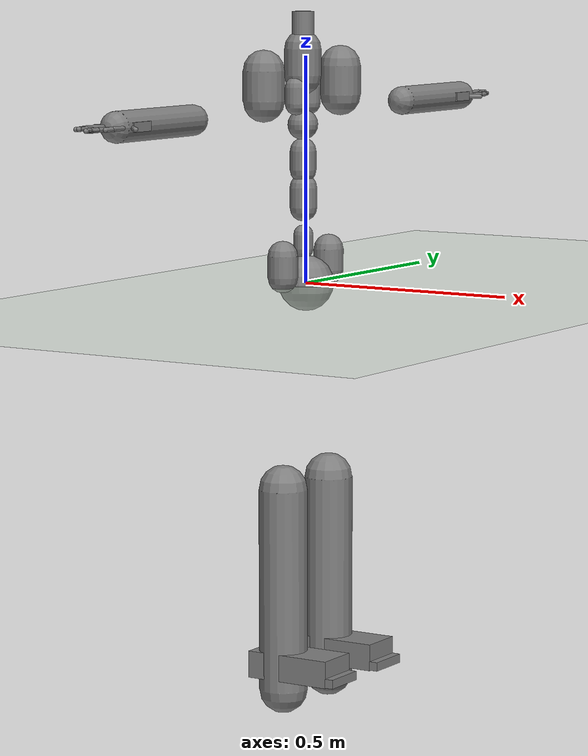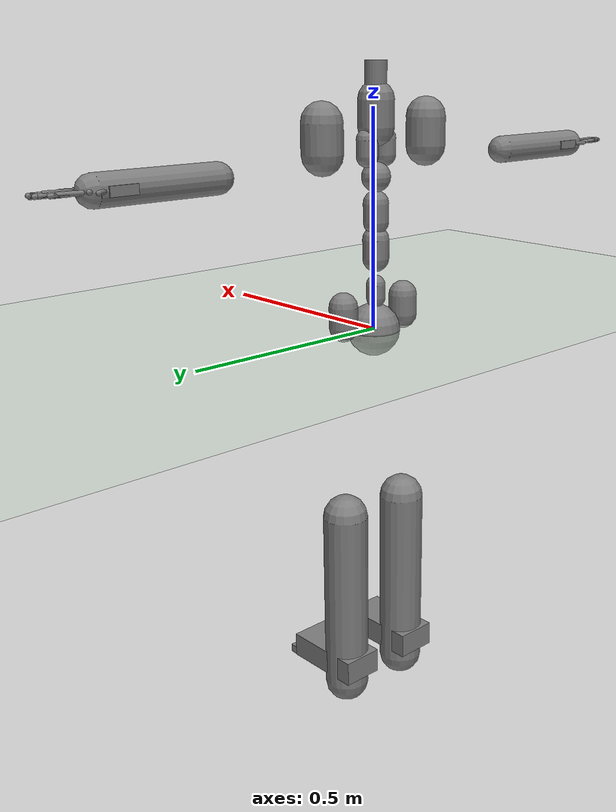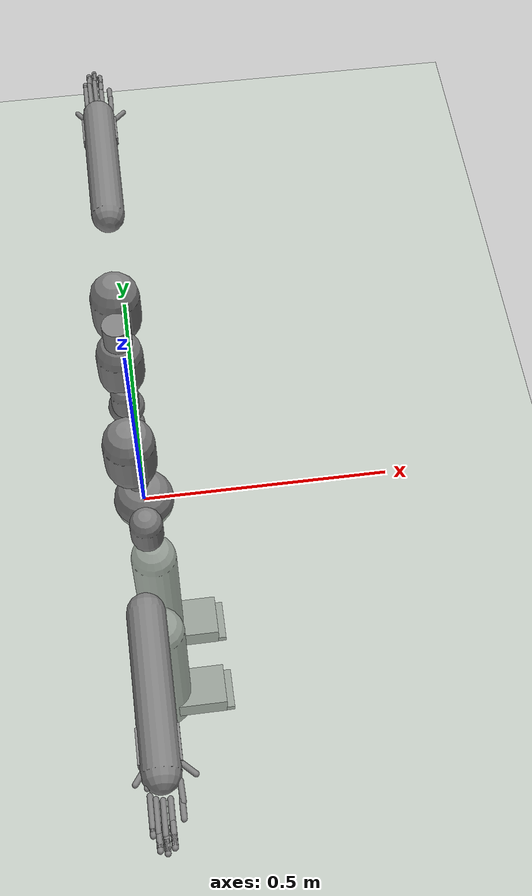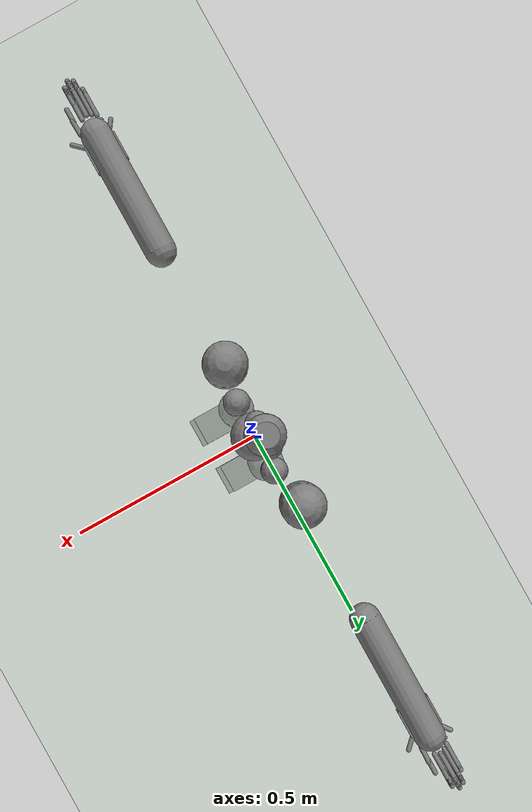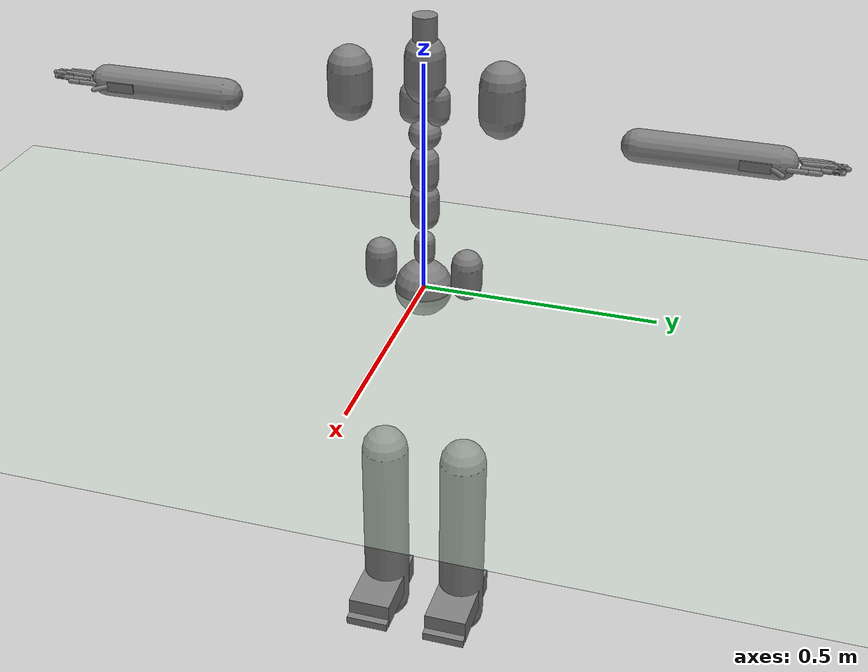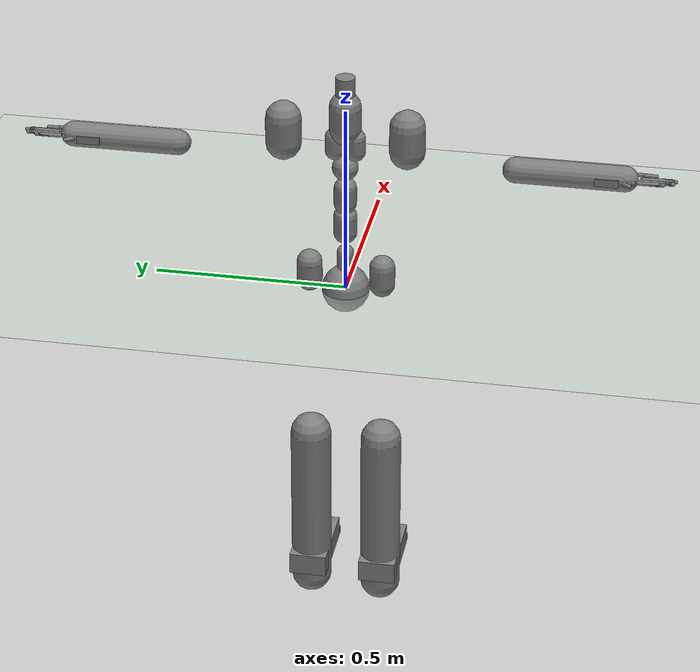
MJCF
<?xml version="1.0" ?>
<mujoco model="humanoid">
  <compiler coordinate="local"/>
  <statistic extent="2" center="0 0 1"/>
  <option timestep="0.00555"/>
  <default>
    <motor ctrlrange="-1 1" ctrllimited="true"/>
    <geom type="capsule" condim="1" friction="1.0 0.05 0.05" solimp=".9 .99 .003" solref=".015 1"/>
    <joint type="hinge" damping="0.1" stiffness="5" armature=".007" limited="true" solimplimit="0 .99 .01"/>
    <site size=".04" group="3"/>
  </default>
  <asset>
    <texture type="skybox" builtin="gradient" rgb1=".4 .5 .6" rgb2="0 0 0" width="100" height="100"/>
    <texture builtin="flat" height="1278" mark="cross" markrgb="1 1 1" name="texgeom" random="0.01" rgb1="0.8 0.6 0.4" rgb2="0.8 0.6 0.4" type="cube" width="127"/>
    <texture builtin="checker" height="100" name="texplane" rgb1="0 0 0" rgb2="0.8 0.8 0.8" type="2d" width="100"/>
    <material name="MatPlane" reflectance="0.5" shininess="1" specular="1" texrepeat="60 60" texture="texplane"/>
    <material name="geom" texture="texgeom" texuniform="true"/>
  </asset>
  <worldbody>
    <light cutoff="100" diffuse="1 1 1" dir="-0 0 -1.3" directional="true" exponent="1" pos="0 0 1.3" specular=".1 .1 .1"/>
    <geom conaffinity="1" condim="3" name="floor" pos="0 0 0" rgba="0.8 0.9 0.8 1" size="100 100 .2" type="plane" material="MatPlane"/>
    <body name="pHipOrigin" pos="0 0 0">
      <freejoint name="pHipOrigin"/>
      <geom type="sphere" contype="1" conaffinity="1" density="4629.6296296296305" size="0.06169" pos="0.0000 0.0000 -0.0000"/>
      <body name="jL5S1" pos="-0.00695129 0 0.06256141">
        <geom type="capsule" contype="1" conaffinity="1" density="1000" fromto="0 0 0.01259 0 0 0.04406" size="0.02203"/>
        <joint name="jL5S1_x" type="hinge" pos="0 0 0" axis="1 0 0" stiffness="500" damping="500" armature="0.02" range="-180.0000 180.0000"/>
        <joint name="jL5S1_y" type="hinge" pos="0 0 0" axis="0 1 0" stiffness="500" damping="500" armature="0.02" range="-180.0000 180.0000"/>
        <joint name="jL5S1_z" type="hinge" pos="0 0 0" axis="0 0 1" stiffness="500" damping="500" armature="0.02" range="-180.0000 180.0000"/>
        <body name="jL4L3" pos="0 0 0.08709376">
          <geom type="capsule" contype="1" conaffinity="1" density="1000" fromto="0 0 0.01742 0 0 0.06097" size="0.03048"/>
          <joint name="jL4L3_x" type="hinge" pos="0 0 0" axis="1 0 0" stiffness="500" damping="500" armature="0.02" range="-180.0000 180.0000"/>
          <joint name="jL4L3_y" type="hinge" pos="0 0 0" axis="0 1 0" stiffness="500" damping="500" armature="0.02" range="-180.0000 180.0000"/>
          <joint name="jL4L3_z" type="hinge" pos="0 0 0" axis="0 0 1" stiffness="500" damping="500" armature="0.02" range="-180.0000 180.0000"/>
          <body name="jL1T12" pos="-0.00064446 0 0.08353281">
            <geom type="capsule" contype="1" conaffinity="1" density="1000" fromto="0 0 0.01671 0 0 0.05847" size="0.02924"/>
            <joint name="jL1T12_x" type="hinge" pos="0 0 0" axis="1 0 0" stiffness="500" damping="500" armature="0.02" range="-180.0000 180.0000"/>
            <joint name="jL1T12_y" type="hinge" pos="0 0 0" axis="0 1 0" stiffness="500" damping="500" armature="0.02" range="-180.0000 180.0000"/>
            <joint name="jL1T12_z" type="hinge" pos="0 0 0" axis="0 0 1" stiffness="500" damping="500" armature="0.02" range="-180.0000 180.0000"/>
            <body name="jT9T8" pos="-0.00064508 0 0.08345083">
              <geom type="sphere" contype="1" conaffinity="1" density="1000" size="0.03338" pos="0.000 0.0000 0.033381"/>
              <joint name="jT9T8_x" type="hinge" pos="0 0 0" axis="1 0 0" stiffness="500" damping="500" armature="0.02" range="-180.0000 180.0000"/>
              <joint name="jT9T8_y" type="hinge" pos="0 0 0" axis="0 1 0" stiffness="500" damping="500" armature="0.02" range="-180.0000 180.0000"/>
              <joint name="jT9T8_z" type="hinge" pos="0 0 0" axis="0 0 1" stiffness="500" damping="500" armature="0.02" range="-180.0000 180.0000"/>
              <body name="jT1C7" pos="0 0 0.11714101">
                <geom type="capsule" contype="1" conaffinity="1" density="1000" fromto="0 0 0.02343 0 0 0.08200" size="0.04100"/>
                <joint name="jT1C7_x" type="hinge" pos="0 0 0" axis="1 0 0" stiffness="500" damping="500" armature="0.02" range="-180.0000 180.0000"/>
                <joint name="jT1C7_y" type="hinge" pos="0 0 0" axis="0 1 0" stiffness="500" damping="500" armature="0.02" range="-180.0000 180.0000"/>
                <joint name="jT1C7_z" type="hinge" pos="0 0 0" axis="0 0 1" stiffness="500" damping="500" armature="0.02" range="-180.0000 180.0000"/>
                <body name="jC1Head" pos="0.00096641 0 0.08191570">
                  <geom type="cylinder" contype="1" conaffinity="1" density="1000" fromto="0 0 0 0 0 0.08192" size="0.02458"/>
                  <joint name="jC1Head_x" type="hinge" pos="0 0 0" axis="1 0 0" stiffness="500" damping="500" armature="0.02" range="-180.0000 180.0000"/>
                  <joint name="jC1Head_y" type="hinge" pos="0 0 0" axis="0 1 0" stiffness="500" damping="500" armature="0.02" range="-180.0000 180.0000"/>
                  <joint name="jC1Head_z" type="hinge" pos="0 0 0" axis="0 0 1" stiffness="500" damping="500" armature="0.02" range="-180.0000 180.0000"/>
                </body>
              </body>
              <body name="jRightT4Shoulder" pos="0 -0.02700918 0.06585430">
                <geom type="capsule" contype="1" conaffinity="1" density="1000" fromto="0 0 0.01424 0 0 0.04982" size="0.02491"/>
                <joint name="jRightT4Shoulder_x" type="hinge" pos="0 0 0" axis="1 0 0" stiffness="500" damping="500" armature="0.02" range="-180.0000 180.0000"/>
                <joint name="jRightT4Shoulder_y" type="hinge" pos="0 0 0" axis="0 1 0" stiffness="500" damping="500" armature="0.02" range="-180.0000 180.0000"/>
                <joint name="jRightT4Shoulder_z" type="hinge" pos="0 0 0" axis="0 0 1" stiffness="500" damping="500" armature="0.02" range="-180.0000 180.0000"/>
                <body name="jRightShoulder" pos="0 -0.13014023 0">
                  <geom type="capsule" contype="1" conaffinity="1" density="1000" fromto="0 0 0.02603 0 0 0.09110" size="0.04555"/>
                  <joint name="jRightShoulder_x" type="hinge" pos="0 0 0" axis="1 0 0" stiffness="500" damping="500" armature="0.02" range="-180.0000 180.0000"/>
                  <joint name="jRightShoulder_y" type="hinge" pos="0 0 0" axis="0 1 0" stiffness="500" damping="500" armature="0.02" range="-180.0000 180.0000"/>
                  <joint name="jRightShoulder_z" type="hinge" pos="0 0 0" axis="0 0 1" stiffness="500" damping="500" armature="0.02" range="-180.0000 180.0000"/>
                  <body name="jRightElbow" pos="0 -0.27231985 0">
                    <geom type="capsule" contype="1" conaffinity="1" density="1000" fromto="0 0 0 0.00000000 -0.27231985 0.00000000" size="0.03268"/>
                    <joint name="jRightElbow_x" type="hinge" pos="0 0 0" axis="1 0 0" stiffness="500" damping="500" armature="0.02" range="-180.0000 180.0000"/>
                    <joint name="jRightElbow_y" type="hinge" pos="0 0 0" axis="0 1 0" stiffness="500" damping="500" armature="0.02" range="-180.0000 180.0000"/>
                    <joint name="jRightElbow_z" type="hinge" pos="0 0 0" axis="0 0 1" stiffness="500" damping="500" armature="0.02" range="-180.0000 180.0000"/>
                    <body name="jRightWrist" pos="0.00009181 -0.22811689 0">
                      <geom density="1000" type="box" pos="0 0 0" size="0.035 0.03 0.01" quat="1.0000 0.0000 0.0000 0.0000"/>
                      <joint name="jRightWrist_x" type="hinge" pos="0 0 0" axis="1 0 0" stiffness="500" damping="500" armature="0.02" range="-180.0000 180.0000"/>
                      <joint name="jRightWrist_y" type="hinge" pos="0 0 0" axis="0 1 0" stiffness="500" damping="500" armature="0.02" range="-180.0000 180.0000"/>
                      <joint name="jRightWrist_z" type="hinge" pos="0 0 0" axis="0 0 1" stiffness="500" damping="500" armature="0.02" range="-180.0000 180.0000"/>
                      <body name="jRightFirstCMC" pos="0.02661515 -0.02551212 -0.00120530">
                        <geom type="capsule" contype="1" conaffinity="1" density="1000" fromto="0 0 0 0.02661515 -0.02551212 -0.00120530" size="0.005"/>
                        <joint name="jRightFirstCMC_x" type="hinge" pos="0 0 0" axis="1 0 0" stiffness="500" damping="500" armature="0.02" range="-180.0000 180.0000"/>
                        <joint name="jRightFirstCMC_y" type="hinge" pos="0 0 0" axis="0 1 0" stiffness="500" damping="500" armature="0.02" range="-180.0000 180.0000"/>
                        <joint name="jRightFirstCMC_z" type="hinge" pos="0 0 0" axis="0 0 1" stiffness="500" damping="500" armature="0.02" range="-180.0000 180.0000"/>
                        <body name="jRightFirstMCP" pos="0.00119442 -0.03370581 0.00071220">
                          <geom type="capsule" contype="1" conaffinity="1" density="1000" fromto="0 0 0 0.00119442 -0.03370581 0.00071220" size="0.005"/>
                          <joint name="jRightFirstMCP_x" type="hinge" pos="0 0 0" axis="1 0 0" stiffness="500" damping="500" armature="0.02" range="-180.0000 180.0000"/>
                          <joint name="jRightFirstMCP_y" type="hinge" pos="0 0 0" axis="0 1 0" stiffness="500" damping="500" armature="0.02" range="-180.0000 180.0000"/>
                          <joint name="jRightFirstMCP_z" type="hinge" pos="0 0 0" axis="0 0 1" stiffness="500" damping="500" armature="0.02" range="-180.0000 180.0000"/>
                          <body name="jRightIP" pos="0 -0.02957464 0">
                            <geom type="capsule" contype="1" conaffinity="1" density="1000" fromto="0 0 0 0.00000000 -0.02957464 0.00000000" size="0.005"/>
                            <joint name="jRightIP_x" type="hinge" pos="0 0 0" axis="1 0 0" stiffness="500" damping="500" armature="0.02" range="-180.0000 180.0000"/>
                            <joint name="jRightIP_y" type="hinge" pos="0 0 0" axis="0 1 0" stiffness="500" damping="500" armature="0.02" range="-180.0000 180.0000"/>
                            <joint name="jRightIP_z" type="hinge" pos="0 0 0" axis="0 0 1" stiffness="500" damping="500" armature="0.02" range="-180.0000 180.0000"/>
                          </body>
                        </body>
                      </body>
                      <body name="jRightSecondCMC" pos="0.01046842 -0.03058540 -0.00053348">
                        <geom type="capsule" contype="1" conaffinity="1" density="1000" fromto="0 0 0 0.01046842 -0.03058540 -0.00053348" size="0.005"/>
                        <joint name="jRightSecondCMC_x" type="hinge" pos="0 0 0" axis="1 0 0" stiffness="500" damping="500" armature="0.02" range="-180.0000 180.0000"/>
                        <joint name="jRightSecondCMC_y" type="hinge" pos="0 0 0" axis="0 1 0" stiffness="500" damping="500" armature="0.02" range="-180.0000 180.0000"/>
                        <joint name="jRightSecondCMC_z" type="hinge" pos="0 0 0" axis="0 0 1" stiffness="500" damping="500" armature="0.02" range="-180.0000 180.0000"/>
                        <body name="jRightSecondMCP" pos="-0.00034161 -0.05448380 -0.00056518">
                          <geom type="capsule" contype="1" conaffinity="1" density="1000" fromto="0 0 0 -0.00034161 -0.05448380 -0.00056518" size="0.005"/>
                          <joint name="jRightSecondMCP_x" type="hinge" pos="0 0 0" axis="1 0 0" stiffness="500" damping="500" armature="0.02" range="-180.0000 180.0000"/>
                          <joint name="jRightSecondMCP_y" type="hinge" pos="0 0 0" axis="0 1 0" stiffness="500" damping="500" armature="0.02" range="-180.0000 180.0000"/>
                          <joint name="jRightSecondMCP_z" type="hinge" pos="0 0 0" axis="0 0 1" stiffness="500" damping="500" armature="0.02" range="-180.0000 180.0000"/>
                          <body name="jRightSecondPIP" pos="0 -0.03576731 0">
                            <geom type="capsule" contype="1" conaffinity="1" density="1000" fromto="0 0 0 0.00000000 -0.03576731 0.00000000" size="0.005"/>
                            <joint name="jRightSecondPIP_x" type="hinge" pos="0 0 0" axis="1 0 0" stiffness="500" damping="500" armature="0.02" range="-180.0000 180.0000"/>
                            <joint name="jRightSecondPIP_y" type="hinge" pos="0 0 0" axis="0 1 0" stiffness="500" damping="500" armature="0.02" range="-180.0000 180.0000"/>
                            <joint name="jRightSecondPIP_z" type="hinge" pos="0 0 0" axis="0 0 1" stiffness="500" damping="500" armature="0.02" range="-180.0000 180.0000"/>
                            <body name="jRightSecondDIP" pos="0 -0.01952346 0">
                              <geom type="capsule" contype="1" conaffinity="1" density="1000" fromto="0 0 0 0.00000000 -0.01952346 0.00000000" size="0.005"/>
                              <joint name="jRightSecondDIP_x" type="hinge" pos="0 0 0" axis="1 0 0" stiffness="500" damping="500" armature="0.02" range="-180.0000 180.0000"/>
                              <joint name="jRightSecondDIP_y" type="hinge" pos="0 0 0" axis="0 1 0" stiffness="500" damping="500" armature="0.02" range="-180.0000 180.0000"/>
                              <joint name="jRightSecondDIP_z" type="hinge" pos="0 0 0" axis="0 0 1" stiffness="500" damping="500" armature="0.02" range="-180.0000 180.0000"/>
                            </body>
                          </body>
                        </body>
                      </body>
                      <body name="jRightThirdCMC" pos="-0.00063784 -0.03449304 0.00145014">
                        <geom type="capsule" contype="1" conaffinity="1" density="1000" fromto="0 0 0 -0.00063784 -0.03449304 0.00145014" size="0.005"/>
                        <joint name="jRightThirdCMC_x" type="hinge" pos="0 0 0" axis="1 0 0" stiffness="500" damping="500" armature="0.02" range="-180.0000 180.0000"/>
                        <joint name="jRightThirdCMC_y" type="hinge" pos="0 0 0" axis="0 1 0" stiffness="500" damping="500" armature="0.02" range="-180.0000 180.0000"/>
                        <joint name="jRightThirdCMC_z" type="hinge" pos="0 0 0" axis="0 0 1" stiffness="500" damping="500" armature="0.02" range="-180.0000 180.0000"/>
                        <body name="jRightThirdMCP" pos="-0.00063902 -0.05294290 0.00144037">
                          <geom type="capsule" contype="1" conaffinity="1" density="1000" fromto="0 0 0 -0.00063902 -0.05294290 0.00144037" size="0.005"/>
                          <joint name="jRightThirdMCP_x" type="hinge" pos="0 0 0" axis="1 0 0" stiffness="500" damping="500" armature="0.02" range="-180.0000 180.0000"/>
                          <joint name="jRightThirdMCP_y" type="hinge" pos="0 0 0" axis="0 1 0" stiffness="500" damping="500" armature="0.02" range="-180.0000 180.0000"/>
                          <joint name="jRightThirdMCP_z" type="hinge" pos="0 0 0" axis="0 0 1" stiffness="500" damping="500" armature="0.02" range="-180.0000 180.0000"/>
                          <body name="jRightThirdPIP" pos="0 -0.03916170 0">
                            <geom type="capsule" contype="1" conaffinity="1" density="1000" fromto="0 0 0 0.00000000 -0.03916170 0.00000000" size="0.005"/>
                            <joint name="jRightThirdPIP_x" type="hinge" pos="0 0 0" axis="1 0 0" stiffness="500" damping="500" armature="0.02" range="-180.0000 180.0000"/>
                            <joint name="jRightThirdPIP_y" type="hinge" pos="0 0 0" axis="0 1 0" stiffness="500" damping="500" armature="0.02" range="-180.0000 180.0000"/>
                            <joint name="jRightThirdPIP_z" type="hinge" pos="0 0 0" axis="0 0 1" stiffness="500" damping="500" armature="0.02" range="-180.0000 180.0000"/>
                            <body name="jRightThirdDIP" pos="0 -0.02072567 0">
                              <geom type="capsule" contype="1" conaffinity="1" density="1000" fromto="0 0 0 0.00000000 -0.02072567 0.00000000" size="0.005"/>
                              <joint name="jRightThirdDIP_x" type="hinge" pos="0 0 0" axis="1 0 0" stiffness="500" damping="500" armature="0.02" range="-180.0000 180.0000"/>
                              <joint name="jRightThirdDIP_y" type="hinge" pos="0 0 0" axis="0 1 0" stiffness="500" damping="500" armature="0.02" range="-180.0000 180.0000"/>
                              <joint name="jRightThirdDIP_z" type="hinge" pos="0 0 0" axis="0 0 1" stiffness="500" damping="500" armature="0.02" range="-180.0000 180.0000"/>
                            </body>
                          </body>
                        </body>
                      </body>
                      <body name="jRightFourthCMC" pos="-0.01173051 -0.03267140 0.00076903">
                        <geom type="capsule" contype="1" conaffinity="1" density="1000" fromto="0 0 0 -0.01173051 -0.03267140 0.00076903" size="0.005"/>
                        <joint name="jRightFourthCMC_x" type="hinge" pos="0 0 0" axis="1 0 0" stiffness="500" damping="500" armature="0.02" range="-180.0000 180.0000"/>
                        <joint name="jRightFourthCMC_y" type="hinge" pos="0 0 0" axis="0 1 0" stiffness="500" damping="500" armature="0.02" range="-180.0000 180.0000"/>
                        <joint name="jRightFourthCMC_z" type="hinge" pos="0 0 0" axis="0 0 1" stiffness="500" damping="500" armature="0.02" range="-180.0000 180.0000"/>
                        <body name="jRightFourthMCP" pos="-0.00037464 -0.05134753 0.00080671">
                          <geom type="capsule" contype="1" conaffinity="1" density="1000" fromto="0 0 0 -0.00037464 -0.05134753 0.00080671" size="0.005"/>
                          <joint name="jRightFourthMCP_x" type="hinge" pos="0 0 0" axis="1 0 0" stiffness="500" damping="500" armature="0.02" range="-180.0000 180.0000"/>
                          <joint name="jRightFourthMCP_y" type="hinge" pos="0 0 0" axis="0 1 0" stiffness="500" damping="500" armature="0.02" range="-180.0000 180.0000"/>
                          <joint name="jRightFourthMCP_z" type="hinge" pos="0 0 0" axis="0 0 1" stiffness="500" damping="500" armature="0.02" range="-180.0000 180.0000"/>
                          <body name="jRightFourthPIP" pos="0 -0.03712941 0">
                            <geom type="capsule" contype="1" conaffinity="1" density="1000" fromto="0 0 0 0.00000000 -0.03712941 0.00000000" size="0.005"/>
                            <joint name="jRightFourthPIP_x" type="hinge" pos="0 0 0" axis="1 0 0" stiffness="500" damping="500" armature="0.02" range="-180.0000 180.0000"/>
                            <joint name="jRightFourthPIP_y" type="hinge" pos="0 0 0" axis="0 1 0" stiffness="500" damping="500" armature="0.02" range="-180.0000 180.0000"/>
                            <joint name="jRightFourthPIP_z" type="hinge" pos="0 0 0" axis="0 0 1" stiffness="500" damping="500" armature="0.02" range="-180.0000 180.0000"/>
                            <body name="jRightFourthDIP" pos="0 -0.02069804 0">
                              <geom type="capsule" contype="1" conaffinity="1" density="1000" fromto="0 0 0 0.00000000 -0.02069804 0.00000000" size="0.005"/>
                              <joint name="jRightFourthDIP_x" type="hinge" pos="0 0 0" axis="1 0 0" stiffness="500" damping="500" armature="0.02" range="-180.0000 180.0000"/>
                              <joint name="jRightFourthDIP_y" type="hinge" pos="0 0 0" axis="0 1 0" stiffness="500" damping="500" armature="0.02" range="-180.0000 180.0000"/>
                              <joint name="jRightFourthDIP_z" type="hinge" pos="0 0 0" axis="0 0 1" stiffness="500" damping="500" armature="0.02" range="-180.0000 180.0000"/>
                            </body>
                          </body>
                        </body>
                      </body>
                      <body name="jRightFifthCMC" pos="-0.02062235 -0.02873489 0.00056685">
                        <geom type="capsule" contype="1" conaffinity="1" density="1000" fromto="0 0 0 -0.02062235 -0.02873489 0.00056685" size="0.005"/>
                        <joint name="jRightFifthCMC_x" type="hinge" pos="0 0 0" axis="1 0 0" stiffness="500" damping="500" armature="0.02" range="-180.0000 180.0000"/>
                        <joint name="jRightFifthCMC_y" type="hinge" pos="0 0 0" axis="0 1 0" stiffness="500" damping="500" armature="0.02" range="-180.0000 180.0000"/>
                        <joint name="jRightFifthCMC_z" type="hinge" pos="0 0 0" axis="0 0 1" stiffness="500" damping="500" armature="0.02" range="-180.0000 180.0000"/>
                        <body name="jRightFifthMCP" pos="-0.00000721 -0.04883546 0.00067204">
                          <geom type="capsule" contype="1" conaffinity="1" density="1000" fromto="0 0 0 -0.00000721 -0.04883546 0.00067204" size="0.005"/>
                          <joint name="jRightFifthMCP_x" type="hinge" pos="0 0 0" axis="1 0 0" stiffness="500" damping="500" armature="0.02" range="-180.0000 180.0000"/>
                          <joint name="jRightFifthMCP_y" type="hinge" pos="0 0 0" axis="0 1 0" stiffness="500" damping="500" armature="0.02" range="-180.0000 180.0000"/>
                          <joint name="jRightFifthMCP_z" type="hinge" pos="0 0 0" axis="0 0 1" stiffness="500" damping="500" armature="0.02" range="-180.0000 180.0000"/>
                          <body name="jRightFifthPIP" pos="0 -0.02776819 0">
                            <geom type="capsule" contype="1" conaffinity="1" density="1000" fromto="0 0 0 0.00000000 -0.02776819 0.00000000" size="0.005"/>
                            <joint name="jRightFifthPIP_x" type="hinge" pos="0 0 0" axis="1 0 0" stiffness="500" damping="500" armature="0.02" range="-180.0000 180.0000"/>
                            <joint name="jRightFifthPIP_y" type="hinge" pos="0 0 0" axis="0 1 0" stiffness="500" damping="500" armature="0.02" range="-180.0000 180.0000"/>
                            <joint name="jRightFifthPIP_z" type="hinge" pos="0 0 0" axis="0 0 1" stiffness="500" damping="500" armature="0.02" range="-180.0000 180.0000"/>
                            <body name="jRightFifthDIP" pos="0 -0.01665798 0">
                              <geom type="capsule" contype="1" conaffinity="1" density="1000" fromto="0 0 0 0.00000000 -0.01665798 0.00000000" size="0.005"/>
                              <joint name="jRightFifthDIP_x" type="hinge" pos="0 0 0" axis="1 0 0" stiffness="500" damping="500" armature="0.02" range="-180.0000 180.0000"/>
                              <joint name="jRightFifthDIP_y" type="hinge" pos="0 0 0" axis="0 1 0" stiffness="500" damping="500" armature="0.02" range="-180.0000 180.0000"/>
                              <joint name="jRightFifthDIP_z" type="hinge" pos="0 0 0" axis="0 0 1" stiffness="500" damping="500" armature="0.02" range="-180.0000 180.0000"/>
                            </body>
                          </body>
                        </body>
                      </body>
                    </body>
                  </body>
                </body>
              </body>
              <body name="jLeftT4Shoulder" pos="0 0.02688192 0.06554402">
                <geom type="capsule" contype="1" conaffinity="1" density="1000" fromto="0 0 0.01417 0 0 0.04959" size="0.02479"/>
                <joint name="jLeftT4Shoulder_x" type="hinge" pos="0 0 0" axis="1 0 0" stiffness="500" damping="500" armature="0.02" range="-180.0000 180.0000"/>
                <joint name="jLeftT4Shoulder_y" type="hinge" pos="0 0 0" axis="0 1 0" stiffness="500" damping="500" armature="0.02" range="-180.0000 180.0000"/>
                <joint name="jLeftT4Shoulder_z" type="hinge" pos="0 0 0" axis="0 0 1" stiffness="500" damping="500" armature="0.02" range="-180.0000 180.0000"/>
                <body name="jLeftShoulder" pos="0 0.13041304 0">
                  <geom type="capsule" contype="1" conaffinity="1" density="1000" fromto="0 0 0.02608 0 0 0.09129" size="0.04564"/>
                  <joint name="jLeftShoulder_x" type="hinge" pos="0 0 0" axis="1 0 0" stiffness="500" damping="500" armature="0.02" range="-180.0000 180.0000"/>
                  <joint name="jLeftShoulder_y" type="hinge" pos="0 0 0" axis="0 1 0" stiffness="500" damping="500" armature="0.02" range="-180.0000 180.0000"/>
                  <joint name="jLeftShoulder_z" type="hinge" pos="0 0 0" axis="0 0 1" stiffness="500" damping="500" armature="0.02" range="-180.0000 180.0000"/>
                  <body name="jLeftElbow" pos="0 0.27190107 0">
                    <geom type="capsule" contype="1" conaffinity="1" density="1000" fromto="0 0 0 0.00000000 0.27190107 0.00000000" size="0.03263"/>
                    <joint name="jLeftElbow_x" type="hinge" pos="0 0 0" axis="1 0 0" stiffness="500" damping="500" armature="0.02" range="-180.0000 180.0000"/>
                    <joint name="jLeftElbow_y" type="hinge" pos="0 0 0" axis="0 1 0" stiffness="500" damping="500" armature="0.02" range="-180.0000 180.0000"/>
                    <joint name="jLeftElbow_z" type="hinge" pos="0 0 0" axis="0 0 1" stiffness="500" damping="500" armature="0.02" range="-180.0000 180.0000"/>
                    <body name="jLeftWrist" pos="0.00009139 0.22706520 0">
                      <geom density="1000" type="box" pos="0 0 0" size="0.035 0.03 0.01" quat="1.0000 0.0000 0.0000 0.0000"/>
                      <joint name="jLeftWrist_x" type="hinge" pos="0 0 0" axis="1 0 0" stiffness="500" damping="500" armature="0.02" range="-180.0000 180.0000"/>
                      <joint name="jLeftWrist_y" type="hinge" pos="0 0 0" axis="0 1 0" stiffness="500" damping="500" armature="0.02" range="-180.0000 180.0000"/>
                      <joint name="jLeftWrist_z" type="hinge" pos="0 0 0" axis="0 0 1" stiffness="500" damping="500" armature="0.02" range="-180.0000 180.0000"/>
                      <body name="jLeftFirstCMC" pos="0.02604997 0.02611149 -0.00116591">
                        <geom type="capsule" contype="1" conaffinity="1" density="1000" fromto="0 0 0 0.02604997 0.02611149 -0.00116591" size="0.005"/>
                        <joint name="jLeftFirstCMC_x" type="hinge" pos="0 0 0" axis="1 0 0" stiffness="500" damping="500" armature="0.02" range="-180.0000 180.0000"/>
                        <joint name="jLeftFirstCMC_y" type="hinge" pos="0 0 0" axis="0 1 0" stiffness="500" damping="500" armature="0.02" range="-180.0000 180.0000"/>
                        <joint name="jLeftFirstCMC_z" type="hinge" pos="0 0 0" axis="0 0 1" stiffness="500" damping="500" armature="0.02" range="-180.0000 180.0000"/>
                        <body name="jLeftFirstMCP" pos="0.00118292 0.03370505 0.00069407">
                          <geom type="capsule" contype="1" conaffinity="1" density="1000" fromto="0 0 0 0.00118292 0.03370505 0.00069407" size="0.005"/>
                          <joint name="jLeftFirstMCP_x" type="hinge" pos="0 0 0" axis="1 0 0" stiffness="500" damping="500" armature="0.02" range="-180.0000 180.0000"/>
                          <joint name="jLeftFirstMCP_y" type="hinge" pos="0 0 0" axis="0 1 0" stiffness="500" damping="500" armature="0.02" range="-180.0000 180.0000"/>
                          <joint name="jLeftFirstMCP_z" type="hinge" pos="0 0 0" axis="0 0 1" stiffness="500" damping="500" armature="0.02" range="-180.0000 180.0000"/>
                          <body name="jLeftIP" pos="0 0.02957464 0">
                            <geom type="capsule" contype="1" conaffinity="1" density="1000" fromto="0 0 0 0.00000000 0.02957464 0.00000000" size="0.005"/>
                            <joint name="jLeftIP_x" type="hinge" pos="0 0 0" axis="1 0 0" stiffness="500" damping="500" armature="0.02" range="-180.0000 180.0000"/>
                            <joint name="jLeftIP_y" type="hinge" pos="0 0 0" axis="0 1 0" stiffness="500" damping="500" armature="0.02" range="-180.0000 180.0000"/>
                            <joint name="jLeftIP_z" type="hinge" pos="0 0 0" axis="0 0 1" stiffness="500" damping="500" armature="0.02" range="-180.0000 180.0000"/>
                          </body>
                        </body>
                      </body>
                      <body name="jLeftSecondCMC" pos="0.01058899 0.03052912 -0.00053789">
                        <geom type="capsule" contype="1" conaffinity="1" density="1000" fromto="0 0 0 0.01058899 0.03052912 -0.00053789" size="0.005"/>
                        <joint name="jLeftSecondCMC_x" type="hinge" pos="0 0 0" axis="1 0 0" stiffness="500" damping="500" armature="0.02" range="-180.0000 180.0000"/>
                        <joint name="jLeftSecondCMC_y" type="hinge" pos="0 0 0" axis="0 1 0" stiffness="500" damping="500" armature="0.02" range="-180.0000 180.0000"/>
                        <joint name="jLeftSecondCMC_z" type="hinge" pos="0 0 0" axis="0 0 1" stiffness="500" damping="500" armature="0.02" range="-180.0000 180.0000"/>
                        <body name="jLeftSecondMCP" pos="-0.00029786 0.05448491 -0.00057216">
                          <geom type="capsule" contype="1" conaffinity="1" density="1000" fromto="0 0 0 -0.00029786 0.05448491 -0.00057216" size="0.005"/>
                          <joint name="jLeftSecondMCP_x" type="hinge" pos="0 0 0" axis="1 0 0" stiffness="500" damping="500" armature="0.02" range="-180.0000 180.0000"/>
                          <joint name="jLeftSecondMCP_y" type="hinge" pos="0 0 0" axis="0 1 0" stiffness="500" damping="500" armature="0.02" range="-180.0000 180.0000"/>
                          <joint name="jLeftSecondMCP_z" type="hinge" pos="0 0 0" axis="0 0 1" stiffness="500" damping="500" armature="0.02" range="-180.0000 180.0000"/>
                          <body name="jLeftSecondPIP" pos="0 0.03576731 0">
                            <geom type="capsule" contype="1" conaffinity="1" density="1000" fromto="0 0 0 0.00000000 0.03576731 0.00000000" size="0.005"/>
                            <joint name="jLeftSecondPIP_x" type="hinge" pos="0 0 0" axis="1 0 0" stiffness="500" damping="500" armature="0.02" range="-180.0000 180.0000"/>
                            <joint name="jLeftSecondPIP_y" type="hinge" pos="0 0 0" axis="0 1 0" stiffness="500" damping="500" armature="0.02" range="-180.0000 180.0000"/>
                            <joint name="jLeftSecondPIP_z" type="hinge" pos="0 0 0" axis="0 0 1" stiffness="500" damping="500" armature="0.02" range="-180.0000 180.0000"/>
                            <body name="jLeftSecondDIP" pos="0 0.01952346 0">
                              <geom type="capsule" contype="1" conaffinity="1" density="1000" fromto="0 0 0 0.00000000 0.01952346 0.00000000" size="0.005"/>
                              <joint name="jLeftSecondDIP_x" type="hinge" pos="0 0 0" axis="1 0 0" stiffness="500" damping="500" armature="0.02" range="-180.0000 180.0000"/>
                              <joint name="jLeftSecondDIP_y" type="hinge" pos="0 0 0" axis="0 1 0" stiffness="500" damping="500" armature="0.02" range="-180.0000 180.0000"/>
                              <joint name="jLeftSecondDIP_z" type="hinge" pos="0 0 0" axis="0 0 1" stiffness="500" damping="500" armature="0.02" range="-180.0000 180.0000"/>
                            </body>
                          </body>
                        </body>
                      </body>
                      <body name="jLeftThirdCMC" pos="-0.00064159 0.03449614 0.00140180">
                        <geom type="capsule" contype="1" conaffinity="1" density="1000" fromto="0 0 0 -0.00064159 0.03449614 0.00140180" size="0.005"/>
                        <joint name="jLeftThirdCMC_x" type="hinge" pos="0 0 0" axis="1 0 0" stiffness="500" damping="500" armature="0.02" range="-180.0000 180.0000"/>
                        <joint name="jLeftThirdCMC_y" type="hinge" pos="0 0 0" axis="0 1 0" stiffness="500" damping="500" armature="0.02" range="-180.0000 180.0000"/>
                        <joint name="jLeftThirdCMC_z" type="hinge" pos="0 0 0" axis="0 0 1" stiffness="500" damping="500" armature="0.02" range="-180.0000 180.0000"/>
                        <body name="jLeftThirdMCP" pos="-0.00064418 0.05294393 0.00141142">
                          <geom type="capsule" contype="1" conaffinity="1" density="1000" fromto="0 0 0 -0.00064418 0.05294393 0.00141142" size="0.005"/>
                          <joint name="jLeftThirdMCP_x" type="hinge" pos="0 0 0" axis="1 0 0" stiffness="500" damping="500" armature="0.02" range="-180.0000 180.0000"/>
                          <joint name="jLeftThirdMCP_y" type="hinge" pos="0 0 0" axis="0 1 0" stiffness="500" damping="500" armature="0.02" range="-180.0000 180.0000"/>
                          <joint name="jLeftThirdMCP_z" type="hinge" pos="0 0 0" axis="0 0 1" stiffness="500" damping="500" armature="0.02" range="-180.0000 180.0000"/>
                          <body name="jLeftThirdPIP" pos="0 0.03916170 0">
                            <geom type="capsule" contype="1" conaffinity="1" density="1000" fromto="0 0 0 0.00000000 0.03916170 0.00000000" size="0.005"/>
                            <joint name="jLeftThirdPIP_x" type="hinge" pos="0 0 0" axis="1 0 0" stiffness="500" damping="500" armature="0.02" range="-180.0000 180.0000"/>
                            <joint name="jLeftThirdPIP_y" type="hinge" pos="0 0 0" axis="0 1 0" stiffness="500" damping="500" armature="0.02" range="-180.0000 180.0000"/>
                            <joint name="jLeftThirdPIP_z" type="hinge" pos="0 0 0" axis="0 0 1" stiffness="500" damping="500" armature="0.02" range="-180.0000 180.0000"/>
                            <body name="jLeftThirdDIP" pos="0 0.02072567 0">
                              <geom type="capsule" contype="1" conaffinity="1" density="1000" fromto="0 0 0 0.00000000 0.02072567 0.00000000" size="0.005"/>
                              <joint name="jLeftThirdDIP_x" type="hinge" pos="0 0 0" axis="1 0 0" stiffness="500" damping="500" armature="0.02" range="-180.0000 180.0000"/>
                              <joint name="jLeftThirdDIP_y" type="hinge" pos="0 0 0" axis="0 1 0" stiffness="500" damping="500" armature="0.02" range="-180.0000 180.0000"/>
                              <joint name="jLeftThirdDIP_z" type="hinge" pos="0 0 0" axis="0 0 1" stiffness="500" damping="500" armature="0.02" range="-180.0000 180.0000"/>
                            </body>
                          </body>
                        </body>
                      </body>
                      <body name="jLeftFourthCMC" pos="-0.01216094 0.03250428 0.00082094">
                        <geom type="capsule" contype="1" conaffinity="1" density="1000" fromto="0 0 0 -0.01216094 0.03250428 0.00082094" size="0.005"/>
                        <joint name="jLeftFourthCMC_x" type="hinge" pos="0 0 0" axis="1 0 0" stiffness="500" damping="500" armature="0.02" range="-180.0000 180.0000"/>
                        <joint name="jLeftFourthCMC_y" type="hinge" pos="0 0 0" axis="0 1 0" stiffness="500" damping="500" armature="0.02" range="-180.0000 180.0000"/>
                        <joint name="jLeftFourthCMC_z" type="hinge" pos="0 0 0" axis="0 0 1" stiffness="500" damping="500" armature="0.02" range="-180.0000 180.0000"/>
                        <body name="jLeftFourthMCP" pos="-0.00040289 0.05134459 0.00085319">
                          <geom type="capsule" contype="1" conaffinity="1" density="1000" fromto="0 0 0 -0.00040289 0.05134459 0.00085319" size="0.005"/>
                          <joint name="jLeftFourthMCP_x" type="hinge" pos="0 0 0" axis="1 0 0" stiffness="500" damping="500" armature="0.02" range="-180.0000 180.0000"/>
                          <joint name="jLeftFourthMCP_y" type="hinge" pos="0 0 0" axis="0 1 0" stiffness="500" damping="500" armature="0.02" range="-180.0000 180.0000"/>
                          <joint name="jLeftFourthMCP_z" type="hinge" pos="0 0 0" axis="0 0 1" stiffness="500" damping="500" armature="0.02" range="-180.0000 180.0000"/>
                          <body name="jLeftFourthPIP" pos="0 0.03712941 0">
                            <geom type="capsule" contype="1" conaffinity="1" density="1000" fromto="0 0 0 0.00000000 0.03712941 0.00000000" size="0.005"/>
                            <joint name="jLeftFourthPIP_x" type="hinge" pos="0 0 0" axis="1 0 0" stiffness="500" damping="500" armature="0.02" range="-180.0000 180.0000"/>
                            <joint name="jLeftFourthPIP_y" type="hinge" pos="0 0 0" axis="0 1 0" stiffness="500" damping="500" armature="0.02" range="-180.0000 180.0000"/>
                            <joint name="jLeftFourthPIP_z" type="hinge" pos="0 0 0" axis="0 0 1" stiffness="500" damping="500" armature="0.02" range="-180.0000 180.0000"/>
                            <body name="jLeftFourthDIP" pos="0 0.02069804 0">
                              <geom type="capsule" contype="1" conaffinity="1" density="1000" fromto="0 0 0 0.00000000 0.02069804 0.00000000" size="0.005"/>
                              <joint name="jLeftFourthDIP_x" type="hinge" pos="0 0 0" axis="1 0 0" stiffness="500" damping="500" armature="0.02" range="-180.0000 180.0000"/>
                              <joint name="jLeftFourthDIP_y" type="hinge" pos="0 0 0" axis="0 1 0" stiffness="500" damping="500" armature="0.02" range="-180.0000 180.0000"/>
                              <joint name="jLeftFourthDIP_z" type="hinge" pos="0 0 0" axis="0 0 1" stiffness="500" damping="500" armature="0.02" range="-180.0000 180.0000"/>
                            </body>
                          </body>
                        </body>
                      </body>
                      <body name="jLeftFifthCMC" pos="-0.02124708 0.02828062 0.00057596">
                        <geom type="capsule" contype="1" conaffinity="1" density="1000" fromto="0 0 0 -0.02124708 0.02828062 0.00057596" size="0.005"/>
                        <joint name="jLeftFifthCMC_x" type="hinge" pos="0 0 0" axis="1 0 0" stiffness="500" damping="500" armature="0.02" range="-180.0000 180.0000"/>
                        <joint name="jLeftFifthCMC_y" type="hinge" pos="0 0 0" axis="0 1 0" stiffness="500" damping="500" armature="0.02" range="-180.0000 180.0000"/>
                        <joint name="jLeftFifthCMC_z" type="hinge" pos="0 0 0" axis="0 0 1" stiffness="500" damping="500" armature="0.02" range="-180.0000 180.0000"/>
                        <body name="jLeftFifthMCP" pos="-0.00001385 0.04883413 0.00070269">
                          <geom type="capsule" contype="1" conaffinity="1" density="1000" fromto="0 0 0 -0.00001385 0.04883413 0.00070269" size="0.005"/>
                          <joint name="jLeftFifthMCP_x" type="hinge" pos="0 0 0" axis="1 0 0" stiffness="500" damping="500" armature="0.02" range="-180.0000 180.0000"/>
                          <joint name="jLeftFifthMCP_y" type="hinge" pos="0 0 0" axis="0 1 0" stiffness="500" damping="500" armature="0.02" range="-180.0000 180.0000"/>
                          <joint name="jLeftFifthMCP_z" type="hinge" pos="0 0 0" axis="0 0 1" stiffness="500" damping="500" armature="0.02" range="-180.0000 180.0000"/>
                          <body name="jLeftFifthPIP" pos="0 0.02776819 0">
                            <geom type="capsule" contype="1" conaffinity="1" density="1000" fromto="0 0 0 0.00000000 0.02776819 0.00000000" size="0.005"/>
                            <joint name="jLeftFifthPIP_x" type="hinge" pos="0 0 0" axis="1 0 0" stiffness="500" damping="500" armature="0.02" range="-180.0000 180.0000"/>
                            <joint name="jLeftFifthPIP_y" type="hinge" pos="0 0 0" axis="0 1 0" stiffness="500" damping="500" armature="0.02" range="-180.0000 180.0000"/>
                            <joint name="jLeftFifthPIP_z" type="hinge" pos="0 0 0" axis="0 0 1" stiffness="500" damping="500" armature="0.02" range="-180.0000 180.0000"/>
                            <body name="jLeftFifthDIP" pos="0 0.01665798 0">
                              <geom type="capsule" contype="1" conaffinity="1" density="1000" fromto="0 0 0 0.00000000 0.01665798 0.00000000" size="0.005"/>
                              <joint name="jLeftFifthDIP_x" type="hinge" pos="0 0 0" axis="1 0 0" stiffness="500" damping="500" armature="0.02" range="-180.0000 180.0000"/>
                              <joint name="jLeftFifthDIP_y" type="hinge" pos="0 0 0" axis="0 1 0" stiffness="500" damping="500" armature="0.02" range="-180.0000 180.0000"/>
                              <joint name="jLeftFifthDIP_z" type="hinge" pos="0 0 0" axis="0 0 1" stiffness="500" damping="500" armature="0.02" range="-180.0000 180.0000"/>
                            </body>
                          </body>
                        </body>
                      </body>
                    </body>
                  </body>
                </body>
              </body>
            </body>
          </body>
        </body>
      </body>
      <body name="jRightHip" pos="-0.00016013 -0.09503040 0.00144158">
        <geom type="capsule" contype="1" conaffinity="1" density="1000" fromto="0 0 0.01901 0 0 0.06653" size="0.03326"/>
        <joint name="jRightHip_x" type="hinge" pos="0 0 0" axis="1 0 0" stiffness="500" damping="500" armature="0.02" range="-180.0000 180.0000"/>
        <joint name="jRightHip_y" type="hinge" pos="0 0 0" axis="0 1 0" stiffness="500" damping="500" armature="0.02" range="-180.0000 180.0000"/>
        <joint name="jRightHip_z" type="hinge" pos="0 0 0" axis="0 0 1" stiffness="500" damping="500" armature="0.02" range="-180.0000 180.0000"/>
        <body name="jRightKnee" pos="0.00005379 0 -0.45114281">
          <geom type="capsule" contype="1" conaffinity="1" density="1000" fromto="0 0 0 0.00005379 0.00000000 -0.45114281" size="0.05414"/>
          <joint name="jRightKnee_x" type="hinge" pos="0 0 0" axis="1 0 0" stiffness="500" damping="500" armature="0.02" range="-180.0000 180.0000"/>
          <joint name="jRightKnee_y" type="hinge" pos="0 0 0" axis="0 1 0" stiffness="500" damping="500" armature="0.02" range="-180.0000 180.0000"/>
          <joint name="jRightKnee_z" type="hinge" pos="0 0 0" axis="0 0 1" stiffness="500" damping="500" armature="0.02" range="-180.0000 180.0000"/>
          <body name="jRightAnkle" pos="0.00041001 0 -0.36311501">
            <geom density="1000" type="box" pos="0.04 0. -0.03" size="0.1 0.05 0.03" quat="1.0 0 0 0"/>
            <joint name="jRightAnkle_x" type="hinge" pos="0 0 0" axis="1 0 0" stiffness="500" damping="500" armature="0.02" range="-180.0000 180.0000"/>
            <joint name="jRightAnkle_y" type="hinge" pos="0 0 0" axis="0 1 0" stiffness="500" damping="500" armature="0.02" range="-180.0000 180.0000"/>
            <joint name="jRightAnkle_z" type="hinge" pos="0 0 0" axis="0 0 1" stiffness="500" damping="500" armature="0.02" range="-180.0000 180.0000"/>
            <body name="jRightBallFoot" pos="0.14889506 0 -0.06830725">
              <geom density="1000" type="box" pos="0 0 0.02" size="0.01 0.05 0.01" quat="1.0 0 0 0"/>
              <joint name="jRightBallFoot_x" type="hinge" pos="0 0 0" axis="1 0 0" stiffness="500" damping="500" armature="0.02" range="-180.0000 180.0000"/>
              <joint name="jRightBallFoot_y" type="hinge" pos="0 0 0" axis="0 1 0" stiffness="500" damping="500" armature="0.02" range="-180.0000 180.0000"/>
              <joint name="jRightBallFoot_z" type="hinge" pos="0 0 0" axis="0 0 1" stiffness="500" damping="500" armature="0.02" range="-180.0000 180.0000"/>
            </body>
          </body>
        </body>
      </body>
      <body name="jLeftHip" pos="-0.00015752 0.09470173 0.00141760">
        <geom type="capsule" contype="1" conaffinity="1" density="1000" fromto="0 0 0.01894 0 0 0.06630" size="0.03315"/>
        <joint name="jLeftHip_x" type="hinge" pos="0 0 0" axis="1 0 0" stiffness="500" damping="500" armature="0.02" range="-180.0000 180.0000"/>
        <joint name="jLeftHip_y" type="hinge" pos="0 0 0" axis="0 1 0" stiffness="500" damping="500" armature="0.02" range="-180.0000 180.0000"/>
        <joint name="jLeftHip_z" type="hinge" pos="0 0 0" axis="0 0 1" stiffness="500" damping="500" armature="0.02" range="-180.0000 180.0000"/>
        <body name="jLeftKnee" pos="0.00005374 0 -0.45071485">
          <geom type="capsule" contype="1" conaffinity="1" density="1000" fromto="0 0 0 0.00005374 0.00000000 -0.45071485" size="0.05409"/>
          <joint name="jLeftKnee_x" type="hinge" pos="0 0 0" axis="1 0 0" stiffness="500" damping="500" armature="0.02" range="-180.0000 180.0000"/>
          <joint name="jLeftKnee_y" type="hinge" pos="0 0 0" axis="0 1 0" stiffness="500" damping="500" armature="0.02" range="-180.0000 180.0000"/>
          <joint name="jLeftKnee_z" type="hinge" pos="0 0 0" axis="0 0 1" stiffness="500" damping="500" armature="0.02" range="-180.0000 180.0000"/>
          <body name="jLeftAnkle" pos="0.00041001 0 -0.36311501">
            <geom density="1000" type="box" pos="0.04 0. -0.03" size="0.1 0.05 0.03" quat="1.0 0 0 0"/>
            <joint name="jLeftAnkle_x" type="hinge" pos="0 0 0" axis="1 0 0" stiffness="500" damping="500" armature="0.02" range="-180.0000 180.0000"/>
            <joint name="jLeftAnkle_y" type="hinge" pos="0 0 0" axis="0 1 0" stiffness="500" damping="500" armature="0.02" range="-180.0000 180.0000"/>
            <joint name="jLeftAnkle_z" type="hinge" pos="0 0 0" axis="0 0 1" stiffness="500" damping="500" armature="0.02" range="-180.0000 180.0000"/>
            <body name="jLeftBallFoot" pos="0.14889507 0 -0.06830726">
              <geom density="1000" type="box" pos="0 0 0.02" size="0.01 0.05 0.01" quat="1.0 0 0 0"/>
              <joint name="jLeftBallFoot_x" type="hinge" pos="0 0 0" axis="1 0 0" stiffness="500" damping="500" armature="0.02" range="-180.0000 180.0000"/>
              <joint name="jLeftBallFoot_y" type="hinge" pos="0 0 0" axis="0 1 0" stiffness="500" damping="500" armature="0.02" range="-180.0000 180.0000"/>
              <joint name="jLeftBallFoot_z" type="hinge" pos="0 0 0" axis="0 0 1" stiffness="500" damping="500" armature="0.02" range="-180.0000 180.0000"/>
            </body>
          </body>
        </body>
      </body>
    </body>
  </worldbody>
  <actuator>
    <motor name="jL5S1_x" joint="jL5S1_x" gear="500"/>
    <motor name="jL5S1_y" joint="jL5S1_y" gear="500"/>
    <motor name="jL5S1_z" joint="jL5S1_z" gear="500"/>
    <motor name="jL4L3_x" joint="jL4L3_x" gear="500"/>
    <motor name="jL4L3_y" joint="jL4L3_y" gear="500"/>
    <motor name="jL4L3_z" joint="jL4L3_z" gear="500"/>
    <motor name="jL1T12_x" joint="jL1T12_x" gear="500"/>
    <motor name="jL1T12_y" joint="jL1T12_y" gear="500"/>
    <motor name="jL1T12_z" joint="jL1T12_z" gear="500"/>
    <motor name="jT9T8_x" joint="jT9T8_x" gear="500"/>
    <motor name="jT9T8_y" joint="jT9T8_y" gear="500"/>
    <motor name="jT9T8_z" joint="jT9T8_z" gear="500"/>
    <motor name="jT1C7_x" joint="jT1C7_x" gear="500"/>
    <motor name="jT1C7_y" joint="jT1C7_y" gear="500"/>
    <motor name="jT1C7_z" joint="jT1C7_z" gear="500"/>
    <motor name="jC1Head_x" joint="jC1Head_x" gear="500"/>
    <motor name="jC1Head_y" joint="jC1Head_y" gear="500"/>
    <motor name="jC1Head_z" joint="jC1Head_z" gear="500"/>
    <motor name="jRightT4Shoulder_x" joint="jRightT4Shoulder_x" gear="500"/>
    <motor name="jRightT4Shoulder_y" joint="jRightT4Shoulder_y" gear="500"/>
    <motor name="jRightT4Shoulder_z" joint="jRightT4Shoulder_z" gear="500"/>
    <motor name="jRightShoulder_x" joint="jRightShoulder_x" gear="500"/>
    <motor name="jRightShoulder_y" joint="jRightShoulder_y" gear="500"/>
    <motor name="jRightShoulder_z" joint="jRightShoulder_z" gear="500"/>
    <motor name="jRightElbow_x" joint="jRightElbow_x" gear="500"/>
    <motor name="jRightElbow_y" joint="jRightElbow_y" gear="500"/>
    <motor name="jRightElbow_z" joint="jRightElbow_z" gear="500"/>
    <motor name="jRightWrist_x" joint="jRightWrist_x" gear="500"/>
    <motor name="jRightWrist_y" joint="jRightWrist_y" gear="500"/>
    <motor name="jRightWrist_z" joint="jRightWrist_z" gear="500"/>
    <motor name="jLeftT4Shoulder_x" joint="jLeftT4Shoulder_x" gear="500"/>
    <motor name="jLeftT4Shoulder_y" joint="jLeftT4Shoulder_y" gear="500"/>
    <motor name="jLeftT4Shoulder_z" joint="jLeftT4Shoulder_z" gear="500"/>
    <motor name="jLeftShoulder_x" joint="jLeftShoulder_x" gear="500"/>
    <motor name="jLeftShoulder_y" joint="jLeftShoulder_y" gear="500"/>
    <motor name="jLeftShoulder_z" joint="jLeftShoulder_z" gear="500"/>
    <motor name="jLeftElbow_x" joint="jLeftElbow_x" gear="500"/>
    <motor name="jLeftElbow_y" joint="jLeftElbow_y" gear="500"/>
    <motor name="jLeftElbow_z" joint="jLeftElbow_z" gear="500"/>
    <motor name="jLeftWrist_x" joint="jLeftWrist_x" gear="500"/>
    <motor name="jLeftWrist_y" joint="jLeftWrist_y" gear="500"/>
    <motor name="jLeftWrist_z" joint="jLeftWrist_z" gear="500"/>
    <motor name="jRightHip_x" joint="jRightHip_x" gear="500"/>
    <motor name="jRightHip_y" joint="jRightHip_y" gear="500"/>
    <motor name="jRightHip_z" joint="jRightHip_z" gear="500"/>
    <motor name="jRightKnee_x" joint="jRightKnee_x" gear="500"/>
    <motor name="jRightKnee_y" joint="jRightKnee_y" gear="500"/>
    <motor name="jRightKnee_z" joint="jRightKnee_z" gear="500"/>
    <motor name="jRightAnkle_x" joint="jRightAnkle_x" gear="500"/>
    <motor name="jRightAnkle_y" joint="jRightAnkle_y" gear="500"/>
    <motor name="jRightAnkle_z" joint="jRightAnkle_z" gear="500"/>
    <motor name="jRightBallFoot_x" joint="jRightBallFoot_x" gear="500"/>
    <motor name="jRightBallFoot_y" joint="jRightBallFoot_y" gear="500"/>
    <motor name="jRightBallFoot_z" joint="jRightBallFoot_z" gear="500"/>
    <motor name="jLeftHip_x" joint="jLeftHip_x" gear="500"/>
    <motor name="jLeftHip_y" joint="jLeftHip_y" gear="500"/>
    <motor name="jLeftHip_z" joint="jLeftHip_z" gear="500"/>
    <motor name="jLeftKnee_x" joint="jLeftKnee_x" gear="500"/>
    <motor name="jLeftKnee_y" joint="jLeftKnee_y" gear="500"/>
    <motor name="jLeftKnee_z" joint="jLeftKnee_z" gear="500"/>
    <motor name="jLeftAnkle_x" joint="jLeftAnkle_x" gear="500"/>
    <motor name="jLeftAnkle_y" joint="jLeftAnkle_y" gear="500"/>
    <motor name="jLeftAnkle_z" joint="jLeftAnkle_z" gear="500"/>
    <motor name="jLeftBallFoot_x" joint="jLeftBallFoot_x" gear="500"/>
    <motor name="jLeftBallFoot_y" joint="jLeftBallFoot_y" gear="500"/>
    <motor name="jLeftBallFoot_z" joint="jLeftBallFoot_z" gear="500"/>
    <motor name="jLeftFirstCMC_x" joint="jLeftFirstCMC_x" gear="500"/>
    <motor name="jLeftFirstCMC_y" joint="jLeftFirstCMC_y" gear="500"/>
    <motor name="jLeftFirstCMC_z" joint="jLeftFirstCMC_z" gear="500"/>
    <motor name="jLeftFirstMCP_x" joint="jLeftFirstMCP_x" gear="500"/>
    <motor name="jLeftFirstMCP_y" joint="jLeftFirstMCP_y" gear="500"/>
    <motor name="jLeftFirstMCP_z" joint="jLeftFirstMCP_z" gear="500"/>
    <motor name="jLeftIP_x" joint="jLeftIP_x" gear="500"/>
    <motor name="jLeftIP_y" joint="jLeftIP_y" gear="500"/>
    <motor name="jLeftIP_z" joint="jLeftIP_z" gear="500"/>
    <motor name="jLeftSecondCMC_x" joint="jLeftSecondCMC_x" gear="500"/>
    <motor name="jLeftSecondCMC_y" joint="jLeftSecondCMC_y" gear="500"/>
    <motor name="jLeftSecondCMC_z" joint="jLeftSecondCMC_z" gear="500"/>
    <motor name="jLeftSecondMCP_x" joint="jLeftSecondMCP_x" gear="500"/>
    <motor name="jLeftSecondMCP_y" joint="jLeftSecondMCP_y" gear="500"/>
    <motor name="jLeftSecondMCP_z" joint="jLeftSecondMCP_z" gear="500"/>
    <motor name="jLeftSecondPIP_x" joint="jLeftSecondPIP_x" gear="500"/>
    <motor name="jLeftSecondPIP_y" joint="jLeftSecondPIP_y" gear="500"/>
    <motor name="jLeftSecondPIP_z" joint="jLeftSecondPIP_z" gear="500"/>
    <motor name="jLeftSecondDIP_x" joint="jLeftSecondDIP_x" gear="500"/>
    <motor name="jLeftSecondDIP_y" joint="jLeftSecondDIP_y" gear="500"/>
    <motor name="jLeftSecondDIP_z" joint="jLeftSecondDIP_z" gear="500"/>
    <motor name="jLeftThirdCMC_x" joint="jLeftThirdCMC_x" gear="500"/>
    <motor name="jLeftThirdCMC_y" joint="jLeftThirdCMC_y" gear="500"/>
    <motor name="jLeftThirdCMC_z" joint="jLeftThirdCMC_z" gear="500"/>
    <motor name="jLeftThirdMCP_x" joint="jLeftThirdMCP_x" gear="500"/>
    <motor name="jLeftThirdMCP_y" joint="jLeftThirdMCP_y" gear="500"/>
    <motor name="jLeftThirdMCP_z" joint="jLeftThirdMCP_z" gear="500"/>
    <motor name="jLeftThirdPIP_x" joint="jLeftThirdPIP_x" gear="500"/>
    <motor name="jLeftThirdPIP_y" joint="jLeftThirdPIP_y" gear="500"/>
    <motor name="jLeftThirdPIP_z" joint="jLeftThirdPIP_z" gear="500"/>
    <motor name="jLeftThirdDIP_x" joint="jLeftThirdDIP_x" gear="500"/>
    <motor name="jLeftThirdDIP_y" joint="jLeftThirdDIP_y" gear="500"/>
    <motor name="jLeftThirdDIP_z" joint="jLeftThirdDIP_z" gear="500"/>
    <motor name="jLeftFourthCMC_x" joint="jLeftFourthCMC_x" gear="500"/>
    <motor name="jLeftFourthCMC_y" joint="jLeftFourthCMC_y" gear="500"/>
    <motor name="jLeftFourthCMC_z" joint="jLeftFourthCMC_z" gear="500"/>
    <motor name="jLeftFourthMCP_x" joint="jLeftFourthMCP_x" gear="500"/>
    <motor name="jLeftFourthMCP_y" joint="jLeftFourthMCP_y" gear="500"/>
    <motor name="jLeftFourthMCP_z" joint="jLeftFourthMCP_z" gear="500"/>
    <motor name="jLeftFourthPIP_x" joint="jLeftFourthPIP_x" gear="500"/>
    <motor name="jLeftFourthPIP_y" joint="jLeftFourthPIP_y" gear="500"/>
    <motor name="jLeftFourthPIP_z" joint="jLeftFourthPIP_z" gear="500"/>
    <motor name="jLeftFourthDIP_x" joint="jLeftFourthDIP_x" gear="500"/>
    <motor name="jLeftFourthDIP_y" joint="jLeftFourthDIP_y" gear="500"/>
    <motor name="jLeftFourthDIP_z" joint="jLeftFourthDIP_z" gear="500"/>
    <motor name="jLeftFifthCMC_x" joint="jLeftFifthCMC_x" gear="500"/>
    <motor name="jLeftFifthCMC_y" joint="jLeftFifthCMC_y" gear="500"/>
    <motor name="jLeftFifthCMC_z" joint="jLeftFifthCMC_z" gear="500"/>
    <motor name="jLeftFifthMCP_x" joint="jLeftFifthMCP_x" gear="500"/>
    <motor name="jLeftFifthMCP_y" joint="jLeftFifthMCP_y" gear="500"/>
    <motor name="jLeftFifthMCP_z" joint="jLeftFifthMCP_z" gear="500"/>
    <motor name="jLeftFifthPIP_x" joint="jLeftFifthPIP_x" gear="500"/>
    <motor name="jLeftFifthPIP_y" joint="jLeftFifthPIP_y" gear="500"/>
    <motor name="jLeftFifthPIP_z" joint="jLeftFifthPIP_z" gear="500"/>
    <motor name="jLeftFifthDIP_x" joint="jLeftFifthDIP_x" gear="500"/>
    <motor name="jLeftFifthDIP_y" joint="jLeftFifthDIP_y" gear="500"/>
    <motor name="jLeftFifthDIP_z" joint="jLeftFifthDIP_z" gear="500"/>
    <motor name="jRightFirstCMC_x" joint="jRightFirstCMC_x" gear="500"/>
    <motor name="jRightFirstCMC_y" joint="jRightFirstCMC_y" gear="500"/>
    <motor name="jRightFirstCMC_z" joint="jRightFirstCMC_z" gear="500"/>
    <motor name="jRightFirstMCP_x" joint="jRightFirstMCP_x" gear="500"/>
    <motor name="jRightFirstMCP_y" joint="jRightFirstMCP_y" gear="500"/>
    <motor name="jRightFirstMCP_z" joint="jRightFirstMCP_z" gear="500"/>
    <motor name="jRightIP_x" joint="jRightIP_x" gear="500"/>
    <motor name="jRightIP_y" joint="jRightIP_y" gear="500"/>
    <motor name="jRightIP_z" joint="jRightIP_z" gear="500"/>
    <motor name="jRightSecondCMC_x" joint="jRightSecondCMC_x" gear="500"/>
    <motor name="jRightSecondCMC_y" joint="jRightSecondCMC_y" gear="500"/>
    <motor name="jRightSecondCMC_z" joint="jRightSecondCMC_z" gear="500"/>
    <motor name="jRightSecondMCP_x" joint="jRightSecondMCP_x" gear="500"/>
    <motor name="jRightSecondMCP_y" joint="jRightSecondMCP_y" gear="500"/>
    <motor name="jRightSecondMCP_z" joint="jRightSecondMCP_z" gear="500"/>
    <motor name="jRightSecondPIP_x" joint="jRightSecondPIP_x" gear="500"/>
    <motor name="jRightSecondPIP_y" joint="jRightSecondPIP_y" gear="500"/>
    <motor name="jRightSecondPIP_z" joint="jRightSecondPIP_z" gear="500"/>
    <motor name="jRightSecondDIP_x" joint="jRightSecondDIP_x" gear="500"/>
    <motor name="jRightSecondDIP_y" joint="jRightSecondDIP_y" gear="500"/>
    <motor name="jRightSecondDIP_z" joint="jRightSecondDIP_z" gear="500"/>
    <motor name="jRightThirdCMC_x" joint="jRightThirdCMC_x" gear="500"/>
    <motor name="jRightThirdCMC_y" joint="jRightThirdCMC_y" gear="500"/>
    <motor name="jRightThirdCMC_z" joint="jRightThirdCMC_z" gear="500"/>
    <motor name="jRightThirdMCP_x" joint="jRightThirdMCP_x" gear="500"/>
    <motor name="jRightThirdMCP_y" joint="jRightThirdMCP_y" gear="500"/>
    <motor name="jRightThirdMCP_z" joint="jRightThirdMCP_z" gear="500"/>
    <motor name="jRightThirdPIP_x" joint="jRightThirdPIP_x" gear="500"/>
    <motor name="jRightThirdPIP_y" joint="jRightThirdPIP_y" gear="500"/>
    <motor name="jRightThirdPIP_z" joint="jRightThirdPIP_z" gear="500"/>
    <motor name="jRightThirdDIP_x" joint="jRightThirdDIP_x" gear="500"/>
    <motor name="jRightThirdDIP_y" joint="jRightThirdDIP_y" gear="500"/>
    <motor name="jRightThirdDIP_z" joint="jRightThirdDIP_z" gear="500"/>
    <motor name="jRightFourthCMC_x" joint="jRightFourthCMC_x" gear="500"/>
    <motor name="jRightFourthCMC_y" joint="jRightFourthCMC_y" gear="500"/>
    <motor name="jRightFourthCMC_z" joint="jRightFourthCMC_z" gear="500"/>
    <motor name="jRightFourthMCP_x" joint="jRightFourthMCP_x" gear="500"/>
    <motor name="jRightFourthMCP_y" joint="jRightFourthMCP_y" gear="500"/>
    <motor name="jRightFourthMCP_z" joint="jRightFourthMCP_z" gear="500"/>
    <motor name="jRightFourthPIP_x" joint="jRightFourthPIP_x" gear="500"/>
    <motor name="jRightFourthPIP_y" joint="jRightFourthPIP_y" gear="500"/>
    <motor name="jRightFourthPIP_z" joint="jRightFourthPIP_z" gear="500"/>
    <motor name="jRightFourthDIP_x" joint="jRightFourthDIP_x" gear="500"/>
    <motor name="jRightFourthDIP_y" joint="jRightFourthDIP_y" gear="500"/>
    <motor name="jRightFourthDIP_z" joint="jRightFourthDIP_z" gear="500"/>
    <motor name="jRightFifthCMC_x" joint="jRightFifthCMC_x" gear="500"/>
    <motor name="jRightFifthCMC_y" joint="jRightFifthCMC_y" gear="500"/>
    <motor name="jRightFifthCMC_z" joint="jRightFifthCMC_z" gear="500"/>
    <motor name="jRightFifthMCP_x" joint="jRightFifthMCP_x" gear="500"/>
    <motor name="jRightFifthMCP_y" joint="jRightFifthMCP_y" gear="500"/>
    <motor name="jRightFifthMCP_z" joint="jRightFifthMCP_z" gear="500"/>
    <motor name="jRightFifthPIP_x" joint="jRightFifthPIP_x" gear="500"/>
    <motor name="jRightFifthPIP_y" joint="jRightFifthPIP_y" gear="500"/>
    <motor name="jRightFifthPIP_z" joint="jRightFifthPIP_z" gear="500"/>
    <motor name="jRightFifthDIP_x" joint="jRightFifthDIP_x" gear="500"/>
    <motor name="jRightFifthDIP_y" joint="jRightFifthDIP_y" gear="500"/>
    <motor name="jRightFifthDIP_z" joint="jRightFifthDIP_z" gear="500"/>
  </actuator>
</mujoco>
